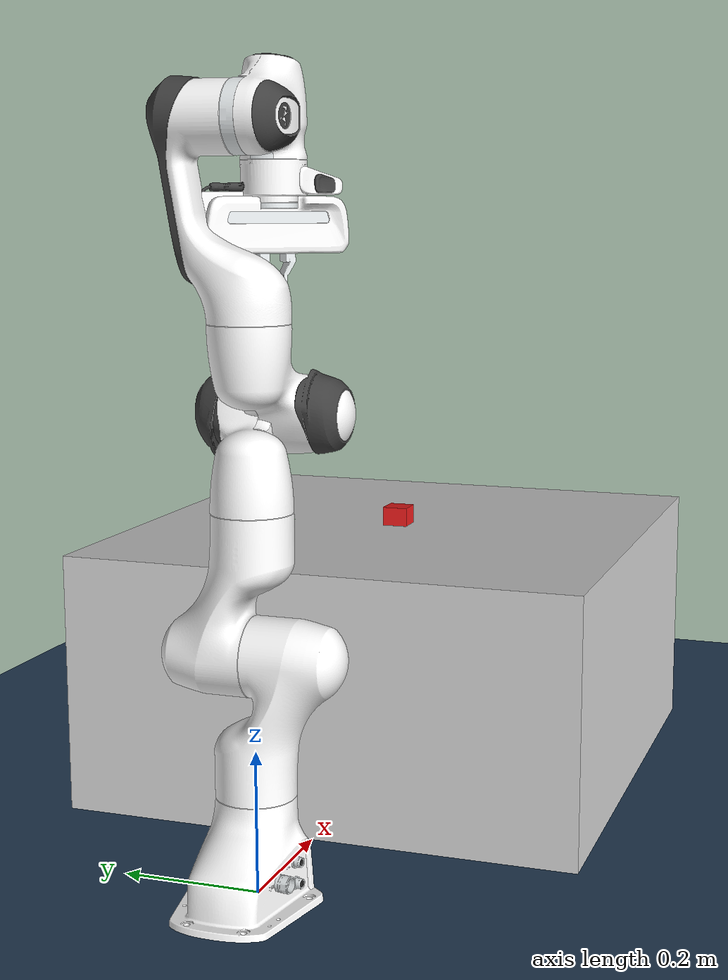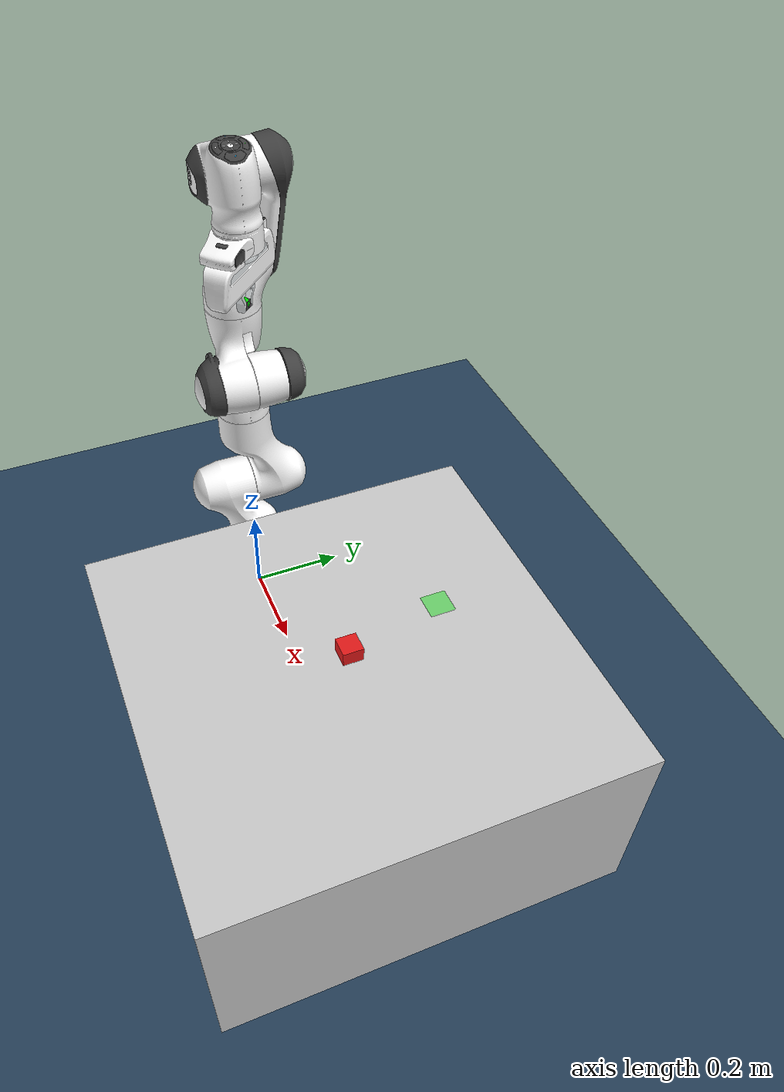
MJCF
<mujoco model="dgpo_final_scene">
  <!-- Include Panda robot -->
  <compiler angle="radian" meshdir="../mujoco_menagerie/franka_emika_panda/assets/"/>

  <option integrator="RK4" cone="elliptic"/>

  <visual>
    <global azimuth="120" elevation="-20"/>
    <headlight ambient="0.3 0.3 0.3" diffuse="0.6 0.6 0.6" specular="0 0 0"/>
    <rgba haze="0.15 0.25 0.35 1"/>
  </visual>

  <default>
    <geom friction="1 0.1 0.01" solref="0.005" solimp="0.95 0.99"/>
    <default class="panda">
      <material shininess="0.25"/>
      <joint range="-2.8973 2.8973" armature="0.1" damping="1"/>
      <geom friction="1 0.005 0.0001" solref="0.02" solimp="0.9 0.95"/>
      <general ctrlrange="-2.8973 2.8973" forcerange="-87 87" biastype="affine"/>
      <default class="finger">
        <joint type="slide" range="0 0.04"/>
      </default>
      <default class="visual">
        <geom type="mesh" contype="0" conaffinity="0" group="2"/>
      </default>
      <default class="collision">
        <geom type="mesh" group="3"/>
        <default class="fingertip_pad_collision_1">
          <geom size="0.0085 0.004 0.0085" type="box"/>
        </default>
        <default class="fingertip_pad_collision_2">
          <geom size="0.003 0.002 0.003" type="box"/>
        </default>
        <default class="fingertip_pad_collision_3">
          <geom size="0.003 0.002 0.003" type="box"/>
        </default>
        <default class="fingertip_pad_collision_4">
          <geom size="0.003 0.002 0.0035" type="box"/>
        </default>
        <default class="fingertip_pad_collision_5">
          <geom size="0.003 0.002 0.0035" type="box"/>
        </default>
      </default>
    </default>
  </default>

  <asset>
    <texture type="2d" colorspace="auto" name="grid" builtin="checker" rgb1="0.1 0.2 0.3" rgb2="0.2 0.3 0.4" width="300" height="300"/>
    <material name="white" class="panda"/>
    <material name="off_white" class="panda" rgba="0.901961 0.921569 0.929412 1"/>
    <material name="black" class="panda" rgba="0.25 0.25 0.25 1"/>
    <material name="green" class="panda" rgba="0 1 0 1"/>
    <material name="light_blue" class="panda" rgba="0.039216 0.541176 0.780392 1"/>
    <material name="grid" texture="grid" texuniform="true" texrepeat="5 5" reflectance="0.2"/>
    <material name="cube_mat" rgba="0.9 0.1 0.1 1"/>
    <material name="goal_mat" rgba="0.1 0.9 0.1 0.5"/>
    <mesh name="link0_c" content_type="model/stl" file="link0.stl"/>
    <mesh name="link1_c" content_type="model/stl" file="link1.stl"/>
    <mesh name="link2_c" content_type="model/stl" file="link2.stl"/>
    <mesh name="link3_c" content_type="model/stl" file="link3.stl"/>
    <mesh name="link4_c" content_type="model/stl" file="link4.stl"/>
    <mesh name="link5_c0" content_type="model/obj" file="link5_collision_0.obj"/>
    <mesh name="link5_c1" content_type="model/obj" file="link5_collision_1.obj"/>
    <mesh name="link5_c2" content_type="model/obj" file="link5_collision_2.obj"/>
    <mesh name="link6_c" content_type="model/stl" file="link6.stl"/>
    <mesh name="link7_c" content_type="model/stl" file="link7.stl"/>
    <mesh name="hand_c" content_type="model/stl" file="hand.stl"/>
    <mesh name="link0_0" content_type="model/obj" file="link0_0.obj"/>
    <mesh name="link0_1" content_type="model/obj" file="link0_1.obj"/>
    <mesh name="link0_2" content_type="model/obj" file="link0_2.obj"/>
    <mesh name="link0_3" content_type="model/obj" file="link0_3.obj"/>
    <mesh name="link0_4" content_type="model/obj" file="link0_4.obj"/>
    <mesh name="link0_5" content_type="model/obj" file="link0_5.obj"/>
    <mesh name="link0_7" content_type="model/obj" file="link0_7.obj"/>
    <mesh name="link0_8" content_type="model/obj" file="link0_8.obj"/>
    <mesh name="link0_9" content_type="model/obj" file="link0_9.obj"/>
    <mesh name="link0_10" content_type="model/obj" file="link0_10.obj"/>
    <mesh name="link0_11" content_type="model/obj" file="link0_11.obj"/>
    <mesh name="link1" content_type="model/obj" file="link1.obj"/>
    <mesh name="link2" content_type="model/obj" file="link2.obj"/>
    <mesh name="link3_0" content_type="model/obj" file="link3_0.obj"/>
    <mesh name="link3_1" content_type="model/obj" file="link3_1.obj"/>
    <mesh name="link3_2" content_type="model/obj" file="link3_2.obj"/>
    <mesh name="link3_3" content_type="model/obj" file="link3_3.obj"/>
    <mesh name="link4_0" content_type="model/obj" file="link4_0.obj"/>
    <mesh name="link4_1" content_type="model/obj" file="link4_1.obj"/>
    <mesh name="link4_2" content_type="model/obj" file="link4_2.obj"/>
    <mesh name="link4_3" content_type="model/obj" file="link4_3.obj"/>
    <mesh name="link5_0" content_type="model/obj" file="link5_0.obj"/>
    <mesh name="link5_1" content_type="model/obj" file="link5_1.obj"/>
    <mesh name="link5_2" content_type="model/obj" file="link5_2.obj"/>
    <mesh name="link6_0" content_type="model/obj" file="link6_0.obj"/>
    <mesh name="link6_1" content_type="model/obj" file="link6_1.obj"/>
    <mesh name="link6_2" content_type="model/obj" file="link6_2.obj"/>
    <mesh name="link6_3" content_type="model/obj" file="link6_3.obj"/>
    <mesh name="link6_4" content_type="model/obj" file="link6_4.obj"/>
    <mesh name="link6_5" content_type="model/obj" file="link6_5.obj"/>
    <mesh name="link6_6" content_type="model/obj" file="link6_6.obj"/>
    <mesh name="link6_7" content_type="model/obj" file="link6_7.obj"/>
    <mesh name="link6_8" content_type="model/obj" file="link6_8.obj"/>
    <mesh name="link6_9" content_type="model/obj" file="link6_9.obj"/>
    <mesh name="link6_10" content_type="model/obj" file="link6_10.obj"/>
    <mesh name="link6_11" content_type="model/obj" file="link6_11.obj"/>
    <mesh name="link6_12" content_type="model/obj" file="link6_12.obj"/>
    <mesh name="link6_13" content_type="model/obj" file="link6_13.obj"/>
    <mesh name="link6_14" content_type="model/obj" file="link6_14.obj"/>
    <mesh name="link6_15" content_type="model/obj" file="link6_15.obj"/>
    <mesh name="link6_16" content_type="model/obj" file="link6_16.obj"/>
    <mesh name="link7_0" content_type="model/obj" file="link7_0.obj"/>
    <mesh name="link7_1" content_type="model/obj" file="link7_1.obj"/>
    <mesh name="link7_2" content_type="model/obj" file="link7_2.obj"/>
    <mesh name="link7_3" content_type="model/obj" file="link7_3.obj"/>
    <mesh name="link7_4" content_type="model/obj" file="link7_4.obj"/>
    <mesh name="link7_5" content_type="model/obj" file="link7_5.obj"/>
    <mesh name="link7_6" content_type="model/obj" file="link7_6.obj"/>
    <mesh name="link7_7" content_type="model/obj" file="link7_7.obj"/>
    <mesh name="hand_0" content_type="model/obj" file="hand_0.obj"/>
    <mesh name="hand_1" content_type="model/obj" file="hand_1.obj"/>
    <mesh name="hand_2" content_type="model/obj" file="hand_2.obj"/>
    <mesh name="hand_3" content_type="model/obj" file="hand_3.obj"/>
    <mesh name="hand_4" content_type="model/obj" file="hand_4.obj"/>
    <mesh name="finger_0" content_type="model/obj" file="finger_0.obj"/>
    <mesh name="finger_1" content_type="model/obj" file="finger_1.obj"/>
  </asset>

  <worldbody>
    <geom name="floor" size="0 0 0.05" type="plane" material="grid"/>
    <camera name="fixed_camera" pos="1.433 -0.047 1.86" quat="0.675531 0.236968 0.231118 0.658854"/>
    <light name="top" pos="0 0 2" dir="0 0 -1" mode="trackcom"/>
    <light pos="0 0 1.5" dir="0 0 -1" type="directional"/>
    <body name="link0" childclass="panda">
      <inertial pos="-0.041018 -0.00014 0.049974" quat="0.00630474 0.751245 0.00741774 0.659952" mass="0.629769" diaginertia="0.00430465 0.00387984 0.00313051"/>
      <geom class="visual" material="off_white" mesh="link0_0"/>
      <geom class="visual" material="black" mesh="link0_1"/>
      <geom class="visual" material="off_white" mesh="link0_2"/>
      <geom class="visual" material="black" mesh="link0_3"/>
      <geom class="visual" material="off_white" mesh="link0_4"/>
      <geom class="visual" material="black" mesh="link0_5"/>
      <geom class="visual" material="white" mesh="link0_7"/>
      <geom class="visual" material="white" mesh="link0_8"/>
      <geom class="visual" material="black" mesh="link0_9"/>
      <geom class="visual" material="off_white" mesh="link0_10"/>
      <geom class="visual" material="white" mesh="link0_11"/>
      <geom class="collision" mesh="link0_c"/>
      <body name="link1" pos="0 0 0.333">
        <inertial pos="0.003875 0.002081 -0.04762" quat="0.711549 0.00634377 -0.0131124 0.702485" mass="4.97068" diaginertia="0.707137 0.703435 0.00852456"/>
        <joint name="joint1" pos="0 0 0" axis="0 0 1"/>
        <geom class="visual" material="white" mesh="link1"/>
        <geom class="collision" mesh="link1_c"/>
        <body name="link2" quat="0.707107 -0.707107 0 0">
          <inertial pos="-0.003141 -0.02872 0.003495" quat="-0.168175 0.828366 -0.122878 0.520027" mass="0.646926" diaginertia="0.0310326 0.0283001 0.00273425"/>
          <joint name="joint2" pos="0 0 0" axis="0 0 1" range="-1.7628 1.7628"/>
          <geom class="visual" material="white" mesh="link2"/>
          <geom class="collision" mesh="link2_c"/>
          <body name="link3" pos="0 -0.316 0" quat="0.707107 0.707107 0 0">
            <inertial pos="0.027518 0.039252 -0.066502" quat="0.662769 -0.00678331 0.252053 0.705096" mass="3.2286" diaginertia="0.0415014 0.0414793 0.00124635"/>
            <joint name="joint3" pos="0 0 0" axis="0 0 1"/>
            <geom class="visual" material="white" mesh="link3_0"/>
            <geom class="visual" material="white" mesh="link3_1"/>
            <geom class="visual" material="white" mesh="link3_2"/>
            <geom class="visual" material="black" mesh="link3_3"/>
            <geom class="collision" mesh="link3_c"/>
            <body name="link4" pos="0.0825 0 0" quat="0.707107 0.707107 0 0">
              <inertial pos="-0.05317 0.104419 0.027454" quat="0.65058 0.529822 -0.0962034 0.535518" mass="3.5879" diaginertia="0.0349596 0.0281483 0.0106201"/>
              <joint name="joint4" pos="0 0 0" axis="0 0 1" range="-3.0718 -0.0698"/>
              <geom class="visual" material="white" mesh="link4_0"/>
              <geom class="visual" material="white" mesh="link4_1"/>
              <geom class="visual" material="black" mesh="link4_2"/>
              <geom class="visual" material="white" mesh="link4_3"/>
              <geom class="collision" mesh="link4_c"/>
              <body name="link5" pos="-0.0825 0.384 0" quat="0.707107 -0.707107 0 0">
                <inertial pos="-0.011953 0.041065 -0.038437" quat="0.987313 -0.0121954 0.0719187 -0.141037" mass="1.22595" diaginertia="0.0367625 0.0288531 0.00803437"/>
                <joint name="joint5" pos="0 0 0" axis="0 0 1"/>
                <geom class="visual" material="black" mesh="link5_0"/>
                <geom class="visual" material="white" mesh="link5_1"/>
                <geom class="visual" material="white" mesh="link5_2"/>
                <geom class="collision" mesh="link5_c0"/>
                <geom class="collision" mesh="link5_c1"/>
                <geom class="collision" mesh="link5_c2"/>
                <body name="link6" quat="0.707107 0.707107 0 0">
                  <inertial pos="0.060149 -0.014117 -0.010517" quat="0.101075 0.59332 0.0287227 0.798079" mass="1.66656" diaginertia="0.00584276 0.00431037 0.00159787"/>
                  <joint name="joint6" pos="0 0 0" axis="0 0 1" range="-0.0175 3.7525"/>
                  <geom class="visual" material="off_white" mesh="link6_0"/>
                  <geom class="visual" material="white" mesh="link6_1"/>
                  <geom class="visual" material="black" mesh="link6_2"/>
                  <geom class="visual" material="white" mesh="link6_3"/>
                  <geom class="visual" material="white" mesh="link6_4"/>
                  <geom class="visual" material="white" mesh="link6_5"/>
                  <geom class="visual" material="white" mesh="link6_6"/>
                  <geom class="visual" material="light_blue" mesh="link6_7"/>
                  <geom class="visual" material="light_blue" mesh="link6_8"/>
                  <geom class="visual" material="black" mesh="link6_9"/>
                  <geom class="visual" material="black" mesh="link6_10"/>
                  <geom class="visual" material="white" mesh="link6_11"/>
                  <geom class="visual" material="green" mesh="link6_12"/>
                  <geom class="visual" material="white" mesh="link6_13"/>
                  <geom class="visual" material="black" mesh="link6_14"/>
                  <geom class="visual" material="black" mesh="link6_15"/>
                  <geom class="visual" material="white" mesh="link6_16"/>
                  <geom class="collision" mesh="link6_c"/>
                  <body name="link7" pos="0.088 0 0" quat="0.707107 0.707107 0 0">
                    <inertial pos="0.010517 -0.004252 0.061597" quat="0.992939 -0.0762041 0.0733595 -0.0537067" mass="0.735522" diaginertia="0.0127345 0.0101055 0.00451803"/>
                    <joint name="joint7" pos="0 0 0" axis="0 0 1"/>
                    <geom class="visual" material="white" mesh="link7_0"/>
                    <geom class="visual" material="black" mesh="link7_1"/>
                    <geom class="visual" material="black" mesh="link7_2"/>
                    <geom class="visual" material="black" mesh="link7_3"/>
                    <geom class="visual" material="black" mesh="link7_4"/>
                    <geom class="visual" material="black" mesh="link7_5"/>
                    <geom class="visual" material="black" mesh="link7_6"/>
                    <geom class="visual" material="white" mesh="link7_7"/>
                    <geom class="collision" mesh="link7_c"/>
                    <body name="hand" pos="0 0 0.107" quat="0.92388 0 0 -0.382683">
                      <inertial pos="-0.01 0 0.03" mass="0.73" diaginertia="0.001 0.0025 0.0017"/>
                      <geom class="visual" material="off_white" mesh="hand_0"/>
                      <geom class="visual" material="black" mesh="hand_1"/>
                      <geom class="visual" material="black" mesh="hand_2"/>
                      <geom class="visual" material="white" mesh="hand_3"/>
                      <geom class="visual" material="off_white" mesh="hand_4"/>
                      <geom class="collision" mesh="hand_c"/>
                      <site name="attachment_site" pos="0 0 0.1" size="0.01" rgba="0 0.8 0 1"/>
                      <camera name="wrist_camera" pos="0 0 0.1" quat="0 1 0 0" fovy="75"/>
                      <body name="left_finger" pos="0 0 0.0584">
                        <inertial pos="0 0 0" mass="0.015" diaginertia="2.375e-06 2.375e-06 7.5e-07"/>
                        <joint name="finger_joint1" class="finger" pos="0 0 0" axis="0 1 0"/>
                        <geom class="visual" material="off_white" mesh="finger_0"/>
                        <geom class="visual" material="black" mesh="finger_1"/>
                        <geom class="collision" mesh="finger_0"/>
                        <geom class="fingertip_pad_collision_1" pos="0 0.0055 0.0445"/>
                        <geom class="fingertip_pad_collision_2" pos="0.0055 0.002 0.05"/>
                        <geom class="fingertip_pad_collision_3" pos="-0.0055 0.002 0.05"/>
                        <geom class="fingertip_pad_collision_4" pos="0.0055 0.002 0.0395"/>
                        <geom class="fingertip_pad_collision_5" pos="-0.0055 0.002 0.0395"/>
                      </body>
                      <body name="right_finger" pos="0 0 0.0584" quat="0 0 0 1">
                        <inertial pos="0 0 0" mass="0.015" diaginertia="2.375e-06 2.375e-06 7.5e-07"/>
                        <joint name="finger_joint2" class="finger" pos="0 0 0" axis="0 1 0"/>
                        <geom class="visual" material="off_white" mesh="finger_0"/>
                        <geom class="visual" material="black" mesh="finger_1"/>
                        <geom class="collision" mesh="finger_0"/>
                        <geom class="fingertip_pad_collision_1" pos="0 0.0055 0.0445"/>
                        <geom class="fingertip_pad_collision_2" pos="0.0055 0.002 0.05"/>
                        <geom class="fingertip_pad_collision_3" pos="-0.0055 0.002 0.05"/>
                        <geom class="fingertip_pad_collision_4" pos="0.0055 0.002 0.0395"/>
                        <geom class="fingertip_pad_collision_5" pos="-0.0055 0.002 0.0395"/>
                      </body>
                    </body>
                  </body>
                </body>
              </body>
            </body>
          </body>
        </body>
      </body>
    </body>
    <body name="table" pos="0.6 0 0.2">
      <geom name="table_geom" size="0.4 0.4 0.2" type="box" rgba="0.8 0.8 0.8 1"/>
    </body>
    <body name="robot_base"/>
    <body name="object" pos="0.6 0 0.41">
      <joint name="object_joint" type="free" damping="0.05"/>
      <geom name="object_geom" size="0.02 0.02 0.02" type="box" mass="0.25" material="cube_mat"/>
      <site name="object_site" pos="0 0 0" rgba="1 0 0 0.5"/>
    </body>
    <body name="goal" pos="0.55 0.2 0.401">
      <geom name="goal_geom" size="0.025 0.025 0.001" type="box" contype="0" conaffinity="0" material="goal_mat"/>
    </body>
  </worldbody>

  <contact>
    <exclude body1="link0" body2="link1"/>
    <exclude body1="left_finger" body2="table"/>
    <exclude body1="right_finger" body2="table"/>
  </contact>

  <equality>
    <joint joint1="finger_joint1" joint2="finger_joint2" polycoef="0 1 0 0 0" solref="0.005" solimp="0.95 0.99"/>
    <weld body1="robot_base" body2="link0" anchor="0 0 0" relpose="0 0 0 1 0 0 0" torquescale="1"/>
  </equality>

  <tendon>
    <fixed name="split">
      <joint joint="finger_joint1" coef="0.5"/>
      <joint joint="finger_joint2" coef="0.5"/>
    </fixed>
  </tendon>

  <actuator>
    <general name="actuator1" class="panda" joint="joint1" gainprm="4500" biasprm="0 -4500 -450"/>
    <general name="actuator2" class="panda" joint="joint2" ctrlrange="-1.7628 1.7628" gainprm="4500" biasprm="0 -4500 -450"/>
    <general name="actuator3" class="panda" joint="joint3" gainprm="3500" biasprm="0 -3500 -350"/>
    <general name="actuator4" class="panda" joint="joint4" ctrlrange="-3.0718 -0.0698" gainprm="3500" biasprm="0 -3500 -350"/>
    <general name="actuator5" class="panda" joint="joint5" forcerange="-12 12" gainprm="2000" biasprm="0 -2000 -200"/>
    <general name="actuator6" class="panda" joint="joint6" ctrlrange="-0.0175 3.7525" forcerange="-12 12" gainprm="2000" biasprm="0 -2000 -200"/>
    <general name="actuator7" class="panda" joint="joint7" forcerange="-12 12" gainprm="2000" biasprm="0 -2000 -200"/>
    <general name="actuator8" class="panda" tendon="split" ctrlrange="0 255" forcerange="-100 100" gainprm="0.0156863" biasprm="0 -100 -10"/>
  </actuator>
</mujoco>
